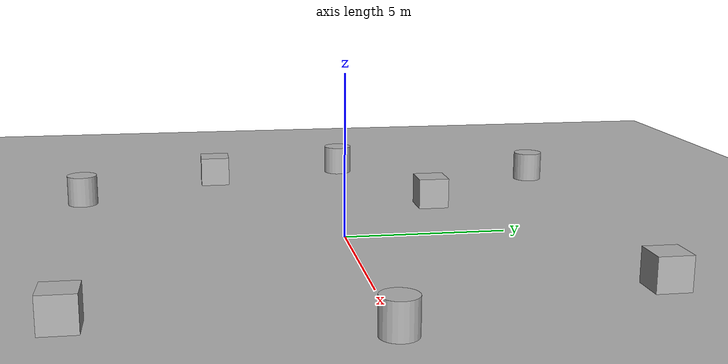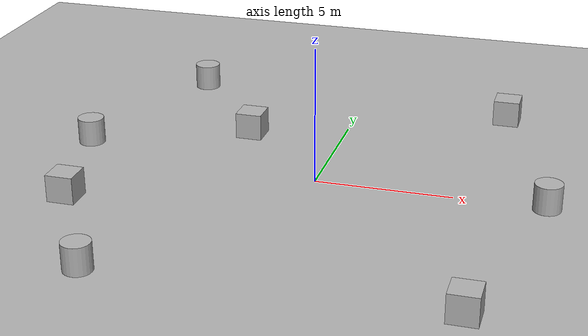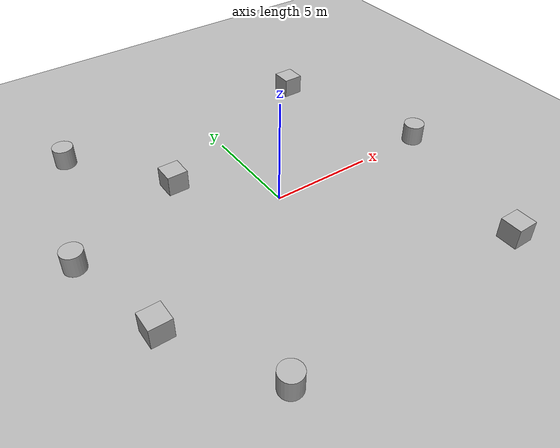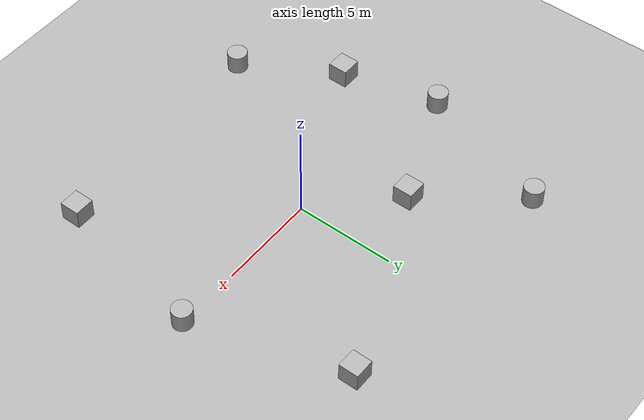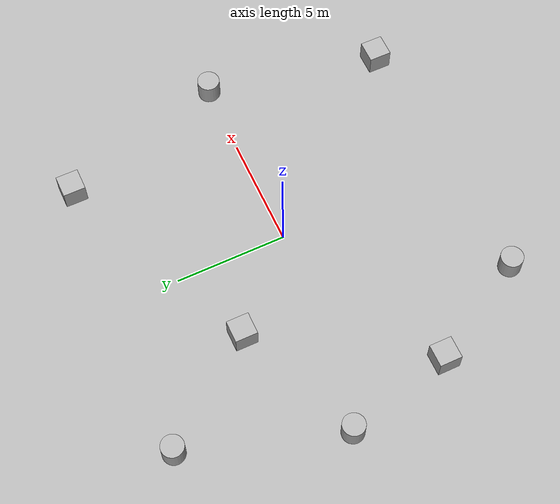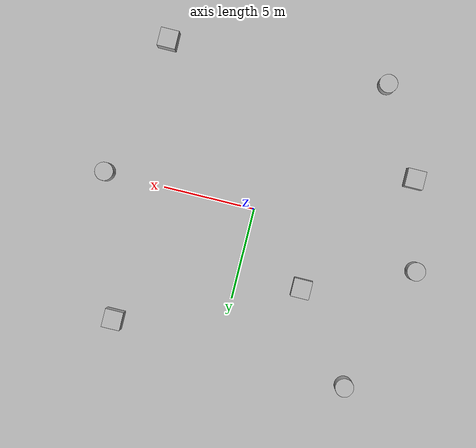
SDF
<?xml version="1.0"?>
<sdf version="1.9">
  <world name="default">
    <plugin name="gz::sim::systems::Physics" filename="gz-sim-physics-system"/>
    <plugin name="gz::sim::systems::UserCommands" filename="gz-sim-user-commands-system"/>
    <plugin name="gz::sim::systems::SceneBroadcaster" filename="gz-sim-scene-broadcaster-system"/>
    <plugin name="gz::sim::systems::Sensors" filename="gz-sim-sensors-system">

      <render_engine>ogre2</render_engine>
    </plugin>
    <plugin name="gz::sim::systems::Imu" filename="gz-sim-imu-system"/>
    <scene>
      <shadows>false</shadows>
      <ambient>0.4 0.4 0.4 1</ambient>
      <background>0.7 0.7 0.7 1</background>
    </scene>
    <gui fullscreen="false">
      <camera name="user_camera">
        <pose>0.319654 -0.235002 9.29441 0 1.5138 0.009599</pose>
        <view_controller>orbit</view_controller>
        <projection_type>perspective</projection_type>
      </camera>
    </gui>
    <physics type="ode">
      <real_time_update_rate>1000</real_time_update_rate>
      <max_step_size>0.001</max_step_size>
      <real_time_factor>1</real_time_factor>
      <ode>
        <solver>
          <type>quick</type>
          <iters>150</iters>
          <precon_iters>0</precon_iters>
          <sor>1.3999999999999999</sor>
          <use_dynamic_moi_rescaling>true</use_dynamic_moi_rescaling>
        </solver>
        <constraints>
          <cfm>1.0000000000000001e-05</cfm>
          <erp>0.20000000000000001</erp>
          <contact_max_correcting_vel>2000</contact_max_correcting_vel>
          <contact_surface_layer>0.01</contact_surface_layer>
        </constraints>
      </ode>
    </physics>
    <gravity>0 0 -9.8</gravity>
    <magnetic_field>6e-06 2.3e-05 -4.2e-05</magnetic_field>
    <atmosphere type="adiabatic"/>
    <model name="ground_plane">
      <static>true</static>
      <link name="link">
        <collision name="collision">
          <geometry>
            <plane>
              <normal>0 0 1</normal>
              <size>100 100</size>
            </plane>
          </geometry>
          <surface>
            <friction>
              <ode>
                <mu>100</mu>
                <mu2>50</mu2>
              </ode>
            </friction>
            <bounce/>
            <contact/>
          </surface>
        </collision>
        <visual name="visual">
          <cast_shadows>false</cast_shadows>
          <geometry>
            <plane>
              <normal>0 0 1</normal>
              <size>100 100</size>
            </plane>
          </geometry>
          <material>
            <ambient>0.3 0.3 0.3 1</ambient>
            <diffuse>0.7 0.7 0.7 1</diffuse>
            <specular>0.01 0.01 0.01 1</specular>
          </material>
        </visual>
        <pose>0 0 0 0 -0 0</pose>
        <inertial>
          <pose>0 0 0 0 -0 0</pose>
          <mass>1</mass>
          <inertia>
            <ixx>1</ixx>
            <ixy>0</ixy>
            <ixz>0</ixz>
            <iyy>1</iyy>
            <iyz>0</iyz>
            <izz>1</izz>
          </inertia>
        </inertial>
        <enable_wind>false</enable_wind>
      </link>
      <pose>0 0 0 0 -0 0</pose>
      <self_collide>false</self_collide>
    </model>
    <model name="box">
      <pose>-3.50732 3.51245 0.5 0 -0 0</pose>
      <link name="box_link">
        <inertial>
          <inertia>
            <ixx>0.16666</ixx>
            <ixy>0</ixy>
            <ixz>0</ixz>
            <iyy>0.16666</iyy>
            <iyz>0</iyz>
            <izz>0.16666</izz>
          </inertia>
          <mass>1</mass>
          <pose>0 0 0 0 -0 0</pose>
        </inertial>
        <collision name="box_collision">
          <geometry>
            <box>
              <size>1 1 1</size>
            </box>
          </geometry>
          <surface>
            <friction>
              <ode/>
            </friction>
            <bounce/>
            <contact/>
          </surface>
        </collision>
        <visual name="box_visual">
          <geometry>
            <box>
              <size>1 1 1</size>
            </box>
          </geometry>
          <material>
            <ambient>0.3 0.3 0.3 1</ambient>
            <diffuse>0.7 0.7 0.7 1</diffuse>
            <specular>1 1 1 1</specular>
          </material>
        </visual>
        <pose>0 0 0 0 -0 0</pose>
        <enable_wind>false</enable_wind>
      </link>
      <static>false</static>
      <self_collide>false</self_collide>
    </model>
    <model name="box_0">
      <pose>-8.01053 -3.65109 0.5 0 -0 0</pose>
      <link name="box_link">
        <inertial>
          <inertia>
            <ixx>0.16666</ixx>
            <ixy>0</ixy>
            <ixz>0</ixz>
            <iyy>0.16666</iyy>
            <iyz>0</iyz>
            <izz>0.16666</izz>
          </inertia>
          <mass>1</mass>
          <pose>0 0 0 0 -0 0</pose>
        </inertial>
        <collision name="box_collision">
          <geometry>
            <box>
              <size>1 1 1</size>
            </box>
          </geometry>
          <surface>
            <friction>
              <ode/>
            </friction>
            <bounce/>
            <contact/>
          </surface>
        </collision>
        <visual name="box_visual">
          <geometry>
            <box>
              <size>1 1 1</size>
            </box>
          </geometry>
          <material>
            <ambient>0.3 0.3 0.3 1</ambient>
            <diffuse>0.7 0.7 0.7 1</diffuse>
            <specular>1 1 1 1</specular>
          </material>
        </visual>
        <pose>0 0 0 0 -0 0</pose>
        <enable_wind>false</enable_wind>
      </link>
      <static>false</static>
      <self_collide>false</self_collide>
    </model>
    <model name="box_1">
      <pose>6.63789 -7.77149 0.5 0 -0 0</pose>
      <link name="box_link">
        <inertial>
          <inertia>
            <ixx>0.16666</ixx>
            <ixy>0</ixy>
            <ixz>0</ixz>
            <iyy>0.16666</iyy>
            <iyz>0</iyz>
            <izz>0.16666</izz>
          </inertia>
          <mass>1</mass>
          <pose>0 0 0 0 -0 0</pose>
        </inertial>
        <collision name="box_collision">
          <geometry>
            <box>
              <size>1 1 1</size>
            </box>
          </geometry>
          <surface>
            <friction>
              <ode/>
            </friction>
            <bounce/>
            <contact/>
          </surface>
        </collision>
        <visual name="box_visual">
          <geometry>
            <box>
              <size>1 1 1</size>
            </box>
          </geometry>
          <material>
            <ambient>0.3 0.3 0.3 1</ambient>
            <diffuse>0.7 0.7 0.7 1</diffuse>
            <specular>1 1 1 1</specular>
          </material>
        </visual>
        <pose>0 0 0 0 -0 0</pose>
        <enable_wind>false</enable_wind>
      </link>
      <static>false</static>
      <self_collide>false</self_collide>
    </model>
    <model name="box_2">
      <pose>5.91125 7.53602 0.5 0 -0 0</pose>
      <link name="box_link">
        <inertial>
          <inertia>
            <ixx>0.16666</ixx>
            <ixy>0</ixy>
            <ixz>0</ixz>
            <iyy>0.16666</iyy>
            <iyz>0</iyz>
            <izz>0.16666</izz>
          </inertia>
          <mass>1</mass>
          <pose>0 0 0 0 -0 0</pose>
        </inertial>
        <collision name="box_collision">
          <geometry>
            <box>
              <size>1 1 1</size>
            </box>
          </geometry>
          <surface>
            <friction>
              <ode/>
            </friction>
            <bounce/>
            <contact/>
          </surface>
        </collision>
        <visual name="box_visual">
          <geometry>
            <box>
              <size>1 1 1</size>
            </box>
          </geometry>
          <material>
            <ambient>0.3 0.3 0.3 1</ambient>
            <diffuse>0.7 0.7 0.7 1</diffuse>
            <specular>1 1 1 1</specular>
          </material>
        </visual>
        <pose>0 0 0 0 -0 0</pose>
        <enable_wind>false</enable_wind>
      </link>
      <static>false</static>
      <self_collide>false</self_collide>
    </model>
    <model name="cylinder">
      <pose>-6.99903 8.09614 0.5 0 -0 0</pose>
      <link name="cylinder_link">
        <inertial>
          <inertia>
            <ixx>0.14580000000000001</ixx>
            <ixy>0</ixy>
            <ixz>0</ixz>
            <iyy>0.14580000000000001</iyy>
            <iyz>0</iyz>
            <izz>0.125</izz>
          </inertia>
          <mass>1</mass>
          <pose>0 0 0 0 -0 0</pose>
        </inertial>
        <collision name="cylinder_collision">
          <geometry>
            <cylinder>
              <radius>0.5</radius>
              <length>1</length>
            </cylinder>
          </geometry>
          <surface>
            <friction>
              <ode/>
            </friction>
            <bounce/>
            <contact/>
          </surface>
        </collision>
        <visual name="cylinder_visual">
          <geometry>
            <cylinder>
              <radius>0.5</radius>
              <length>1</length>
            </cylinder>
          </geometry>
          <material>
            <ambient>0.3 0.3 0.3 1</ambient>
            <diffuse>0.7 0.7 0.7 1</diffuse>
            <specular>1 1 1 1</specular>
          </material>
        </visual>
        <pose>0 0 0 0 -0 0</pose>
        <enable_wind>false</enable_wind>
      </link>
      <static>false</static>
      <self_collide>false</self_collide>
    </model>
    <model name="cylinder_0">
      <pose>8.25252 -0.047044 0.5 0 -0 0</pose>
      <link name="cylinder_link">
        <inertial>
          <inertia>
            <ixx>0.14580000000000001</ixx>
            <ixy>0</ixy>
            <ixz>0</ixz>
            <iyy>0.14580000000000001</iyy>
            <iyz>0</iyz>
            <izz>0.125</izz>
          </inertia>
          <mass>1</mass>
          <pose>0 0 0 0 -0 0</pose>
        </inertial>
        <collision name="cylinder_collision">
          <geometry>
            <cylinder>
              <radius>0.5</radius>
              <length>1</length>
            </cylinder>
          </geometry>
          <surface>
            <friction>
              <ode/>
            </friction>
            <bounce/>
            <contact/>
          </surface>
        </collision>
        <visual name="cylinder_visual">
          <geometry>
            <cylinder>
              <radius>0.5</radius>
              <length>1</length>
            </cylinder>
          </geometry>
          <material>
            <ambient>0.3 0.3 0.3 1</ambient>
            <diffuse>0.7 0.7 0.7 1</diffuse>
            <specular>1 1 1 1</specular>
          </material>
        </visual>
        <pose>0 0 0 0 -0 0</pose>
        <enable_wind>false</enable_wind>
      </link>
      <static>false</static>
      <self_collide>false</self_collide>
    </model>
    <model name="cylinder_1">
      <pose>-9.23863 1.15617 0.5 0 -0 0</pose>
      <link name="cylinder_link">
        <inertial>
          <inertia>
            <ixx>0.14580000000000001</ixx>
            <ixy>0</ixy>
            <ixz>0</ixz>
            <iyy>0.14580000000000001</iyy>
            <iyz>0</iyz>
            <izz>0.125</izz>
          </inertia>
          <mass>1</mass>
          <pose>0 0 0 0 -0 0</pose>
        </inertial>
        <collision name="cylinder_collision">
          <geometry>
            <cylinder>
              <radius>0.5</radius>
              <length>1</length>
            </cylinder>
          </geometry>
          <surface>
            <friction>
              <ode/>
            </friction>
            <bounce/>
            <contact/>
          </surface>
        </collision>
        <visual name="cylinder_visual">
          <geometry>
            <cylinder>
              <radius>0.5</radius>
              <length>1</length>
            </cylinder>
          </geometry>
          <material>
            <ambient>0.3 0.3 0.3 1</ambient>
            <diffuse>0.7 0.7 0.7 1</diffuse>
            <specular>1 1 1 1</specular>
          </material>
        </visual>
        <pose>0 0 0 0 -0 0</pose>
        <enable_wind>false</enable_wind>
      </link>
      <static>false</static>
      <self_collide>false</self_collide>
    </model>
    <model name="cylinder_2">
      <pose>-5.37983 -8.24844 0.5 0 -0 0</pose>
      <link name="cylinder_link">
        <inertial>
          <inertia>
            <ixx>0.14580000000000001</ixx>
            <ixy>0</ixy>
            <ixz>0</ixz>
            <iyy>0.14580000000000001</iyy>
            <iyz>0</iyz>
            <izz>0.125</izz>
          </inertia>
          <mass>1</mass>
          <pose>0 0 0 0 -0 0</pose>
        </inertial>
        <collision name="cylinder_collision">
          <geometry>
            <cylinder>
              <radius>0.5</radius>
              <length>1</length>
            </cylinder>
          </geometry>
          <surface>
            <friction>
              <ode/>
            </friction>
            <bounce/>
            <contact/>
          </surface>
        </collision>
        <visual name="cylinder_visual">
          <geometry>
            <cylinder>
              <radius>0.5</radius>
              <length>1</length>
            </cylinder>
          </geometry>
          <material>
            <ambient>0.3 0.3 0.3 1</ambient>
            <diffuse>0.7 0.7 0.7 1</diffuse>
            <specular>1 1 1 1</specular>
          </material>
        </visual>
        <pose>0 0 0 0 -0 0</pose>
        <enable_wind>false</enable_wind>
      </link>
      <static>false</static>
      <self_collide>false</self_collide>
    </model>
    <light name="sun" type="directional">
      <pose>0 0 10 0 -0 0</pose>
      <cast_shadows>true</cast_shadows>
      <intensity>1</intensity>
      <direction>-0.5 0.1 -0.9</direction>
      <diffuse>0.8 0.8 0.8 1</diffuse>
      <specular>0.2 0.2 0.2 1</specular>
      <attenuation>
        <range>1000</range>
        <linear>0.01</linear>
        <constant>0.90000000000000002</constant>
        <quadratic>0.001</quadratic>
      </attenuation>
      <spot>
        <inner_angle>0</inner_angle>
        <outer_angle>0</outer_angle>
        <falloff>0</falloff>
      </spot>
    </light>
  </world>
</sdf>
